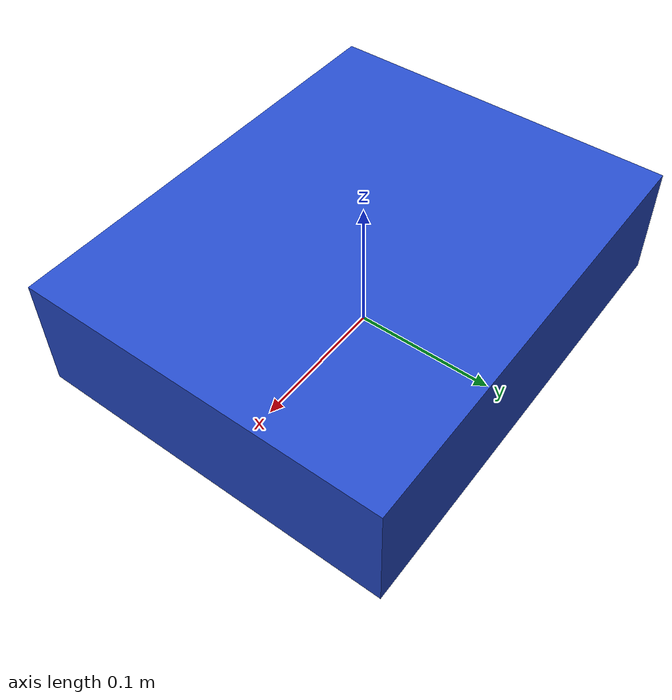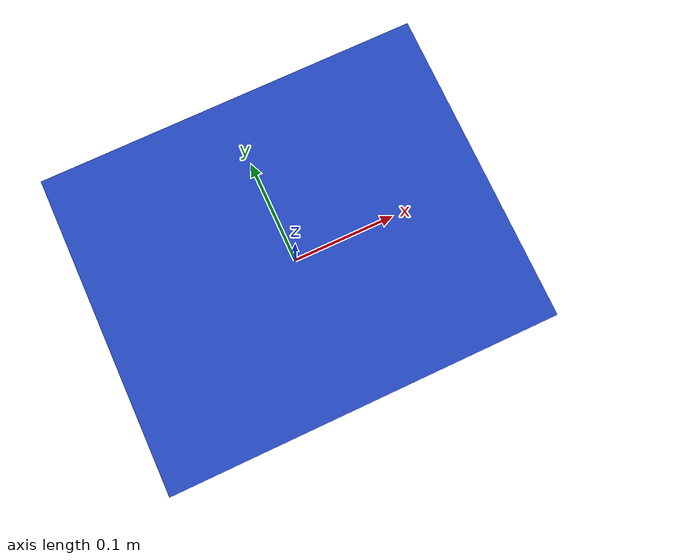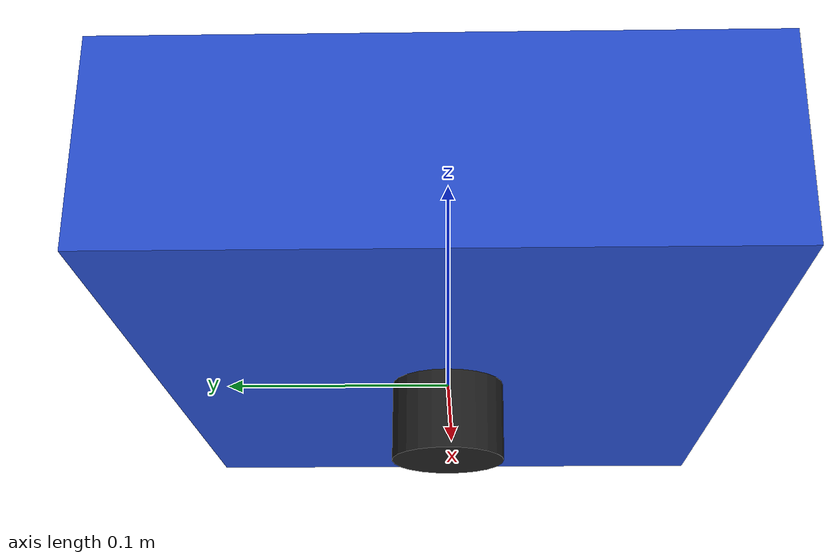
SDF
<?xml version="1.0" ?>
<sdf version="1.5">
    <model name="pi_robot">

    	<!-- * * * Link Definitions * * * -->
        <!-- * * * Colors Avaolable here: /home/ubuntu/.gazebo/models/media/materials/scripts/gazebo.material * * * -->
        <!-- Conversion to SDF Made By TheConstructSim -->
     	<link name="base_link">
     	    <pose>0 0 0.0425 0 0 0</pose>
            <inertial>
                <mass>10.5</mass>
                <inertia>
                    <ixx>1.0</ixx>
                    <iyy>1.0</iyy>
                    <izz>1.0</izz>
                    <ixy>0.0</ixy>
                    <ixz>0.0</ixz>
                    <iyz>0.0</iyz>
                </inertia>
            </inertial>

            <collision name="col_base_link">
                <geometry>
                    <box>
                        <size>0.32 0.26 0.085</size>
                    </box>
                </geometry>
            </collision>
    		<visual name="vis_base_link">
    			<geometry>
    				<box>
                        <size>0.32 0.26 0.085</size>
                    </box>
    			</geometry>
                <material>

                    <script>
                    <uri>file://media/materials/scripts/gazebo.material</uri>
                    <name>Gazebo/Blue</name>
                    </script>

                </material>
    		</visual>
    	</link>

    	<!--- Example Working -->
    	<link name="base_laser">
    	    <pose>0 0 0 0 0 0</pose>
            <inertial>
                <pose>0 0 0 0 0 0</pose>
                <mass>0.5</mass>
                <inertia>
                    <ixx>1.0</ixx>
                    <iyy>1.0</iyy>
                    <izz>1.0</izz>
                    <ixy>0.0</ixy>
                    <ixz>0.0</ixz>
                    <iyz>0.0</iyz>
                </inertia>
            </inertial>

            <collision name="col_base_laser">
                <geometry>
                    <cylinder>
                        <radius>0.025</radius>
                        <length>0.07</length>
                    </cylinder>
                </geometry>
            </collision>
    		<visual name="vis_base_laser">
    			<geometry>
    				<cylinder>
                        <radius>0.025</radius>
                        <length>0.07</length>
                    </cylinder>
    			</geometry>
                <material>

                    <script>
                    <uri>file://media/materials/scripts/gazebo.material</uri>
                    <name>Gazebo/Black</name>
                    </script>

                </material>
    		</visual>
    	</link>

	<!-- * * * Joint Definitions * * * -->

    <!-- Each joint must have a unique name -->
    <joint type="revolute" name="base_laser_joint">
      <!-- Position the joint at the bottom of the top link -->
      <pose>0.18 0 0.07 0 0 0</pose>
      <!-- Use the base link as the parent of the joint -->
      <parent>base_link</parent>
      <!-- Use the top link as the child of the joint -->
      <child>base_laser</child>
      <!-- The axis defines the joint's degree of freedom -->
      <axis>
        <!-- Revolve around the z-axis -->
        <xyz>0 0 1</xyz>
        <use_parent_model_frame>true</use_parent_model_frame>
        <!-- Limit refers to the range of motion of the joint -->
        <limit>
          <!-- Use a very large number to indicate a continuous revolution -->
          <lower>0</lower>
          <upper>0</upper>
        </limit>
      </axis>
    </joint>

    </model>
</sdf>
